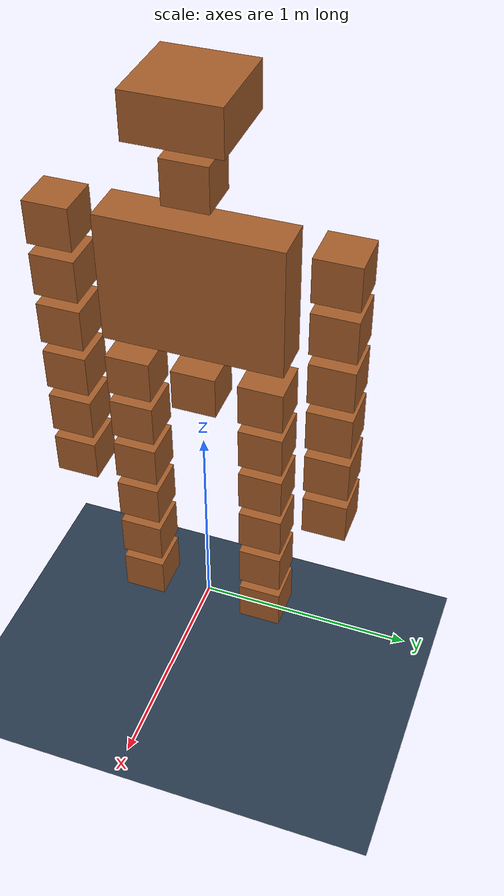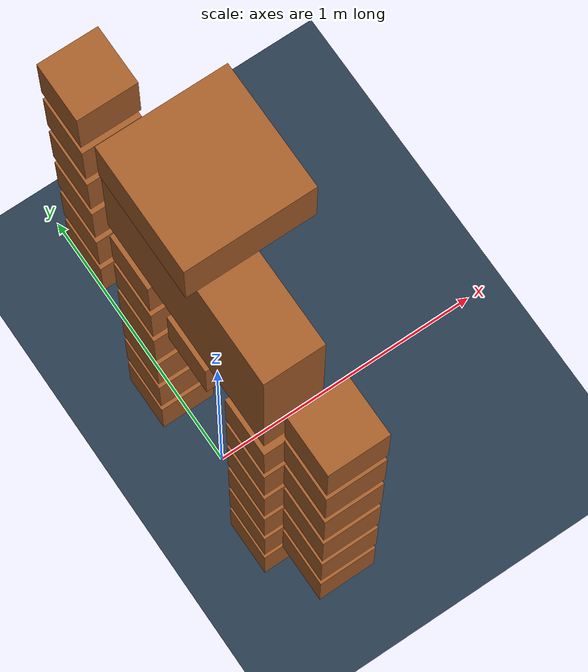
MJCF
<mujoco model="TEO_humanoid">

    <!-- Compiler settings -->
    <compiler inertiafromgeom="true" angle="degree"/>

    <!-- Default settings for joints, geoms, and motors -->
    <default>
        <joint limited="true" damping="1" armature="0"/>
        <geom condim="1" material="matgeom"/>
        <motor ctrlrange="-.4 .4" ctrllimited="true"/>
    </default>

    <!-- Simulation settings -->
    <option timestep="0.005" iterations="50" tolerance="1e-10" solver="Newton" jacobian="dense" cone="pyramidal"/>

    <!-- Size settings -->
    <size nconmax="50" njmax="200" nstack="10000"/>

    <!-- Visual settings -->
    <visual>
        <map force="0.1" zfar="30"/>
        <rgba haze="0.15 0.25 0.35 1"/>
        <quality shadowsize="2048"/>
        <global offwidth="800" offheight="800"/>
    </visual>

    <!-- Asset definitions -->
    <asset>
        <!-- Skybox texture -->
        <texture type="skybox" builtin="gradient" rgb1="0.3 0.5 0.7" rgb2="0 0 0" width="512" height="512"/>

        <!-- Plane texture -->
        <texture name="texplane" type="2d" builtin="checker" rgb1=".2 .3 .4" rgb2=".1 0.15 0.2" width="512" height="512" mark="cross" markrgb=".8 .8 .8"/>

        <!-- Geom texture -->
        <texture name="texgeom" type="cube" builtin="flat" mark="cross" width="127" height="1278"
        rgb1="0.8 0.6 0.4" rgb2="0.8 0.6 0.4" markrgb="1 1 1" random="0.01"/>

        <!-- Material definitions -->
        <material name="matplane" reflectance="0.3" texture="texplane" texrepeat="1 1" texuniform="true"/>
        <material name="matgeom" texture="texgeom" texuniform="true" rgba="0.8 0.6 .4 1"/>
    </asset>

    <!-- Worldbody definitions -->
    <worldbody>
        <!-- Ground plane -->
        <geom name="floor" pos="0 0 0" size="0 0 .25" type="plane" material="matplane" condim="3"/>

        <!-- Lights -->
        <light directional="false" diffuse=".2 .2 .2" specular="0 0 0" pos="0 0 5" dir="0 0 -1" castshadow="false"/>
        <light mode="targetbodycom" target="AxialTrunk" directional="false" diffuse=".8 .8 .8" specular="0.3 0.3 0.3" pos="0 0 4.0" dir="0 0 -1"/>

        <!-- Body hierarchy -->
        <!-- AxialTrunk -->
        <body name="AxialTrunk" pos="0 0 1.35">
            <!-- AxialTrunk geometry and joint -->
            <geom name="AxialTrunk_geom" type="box" pos="0 0 0" size="0.1 0.1 0.1"/>
            <joint name="AxialTrunk_joint" type="free" pos="0 0 0" axis="0 0 1" range="-59.3 46.3"/>

            <!-- FrontalTrunk -->
            <body name="FrontalTrunk" pos="0 0 0.5">
                <!-- FrontalTrunk geometry and joint -->
                <geom name="FrontalTrunk_geom" type="box" pos="0 0 0" size="0.1 0.4 0.3"/>
                <joint name="FrontalTrunk_joint" type="hinge" pos="0 0 0" axis="0 1 0" range="-90.4 10.1"/>

                <!-- AxialNeck -->
                <body name="AxialNeck" pos="0 0 0.5">
                    <!-- AxialNeck geometry and joint -->
                    <geom name="AxialNeck_geom" type="box" pos="0 0 0" size="0.1 0.1 0.1"/>
                    <joint name="AxialNeck_joint" type="hinge" pos="0 0 0" axis="0 0 1" range="-60 60"/>

                    <!-- FrontalNeck -->
                    <body name="FrontalNeck" pos="0 0 0.3">
                        <!-- FrontalNeck geometry and joint -->
                        <geom name="FrontalNeck_geom" type="box" pos="0 0 0" size="0.2 0.2 0.1"/>
                        <joint name="FrontalNeck_joint" type="hinge" pos="0 0 0" axis="0 1 0" range="-60 60"/>
                    </body>
                </body>

                <!-- FrontalRightShoulder -->
                <body name="FrontalRightShoulder" pos="0 -0.6 0.2">
                    <!-- FrontalRightShoulder geometry and joint -->
                    <geom name="FrontalRightShoulder_geom" type="box" pos="0 0 0" size="0.1 0.1 0.1"/>
                    <joint name="FrontalRightShoulder_joint" type="hinge" pos="0 0 0" axis="0 1 0" range="-98.1 106"/>

                    <!-- SagittalRightShoulder -->
                    <body name="SagittalRightShoulder" pos="0 0 -0.25">
                        <!-- SagittalRightShoulder geometry and joint -->
                        <geom name="SagittalRightShoulder" type="box" pos="0 0 0" size="0.1 0.1 0.1"/>
                        <joint name="SagittalRightShoulder_joint" type="hinge" pos="0 0 0" axis="1 0 0" range="-75.5 22.4"/>

                        <!-- AxialRightShoulder -->
                        <body name="AxialRightShoulder" pos="0 0 -0.25">
                            <!-- AxialRightShoulder geometry and joint -->
                            <geom name="AxialRightShoulder_geom" type="box" pos="0 0 0" size="0.1 0.1 0.1"/>
                            <joint name="AxialRightShoulder_joint" type="hinge" pos="0 0 0" axis="0 0 1" range="-80.1 57"/>

                            <!-- FrontalRightElbow -->
                            <body name="FrontalRightElbow" pos="0 0 -0.25">
                                <!-- FrontalRightElbow geometry and joint -->
                                <geom name="FrontalRightElbow_geom" type="box" pos="0 0 0" size="0.1 0.1 0.1"/>
                                <joint name="FrontalRightElbow_joint" type="hinge" pos="0 0 0" axis="0 1 0" range="-99.6 98.4"/>

                                <!-- AxialRightWrist -->
                                <body name="AxialRightWrist" pos="0 0 -0.25">
                                    <!-- AxialRightWrist geometry and joint -->
                                    <geom name="AxialRightWrist_geom" type="box" pos="0 0 0" size="0.1 0.1 0.1"/>
                                    <joint name="AxialRightWrist_joint" type="hinge" pos="0 0 0" axis="0 0 1" range="-80.4 99.6"/>

                                    <!-- FrontalRightWrist -->
                                    <body name="FrontalRightWrist" pos="0 0 -0.25">
                                        <!-- FrontalRightWrist geometry and joint -->
                                        <geom name="FrontalRightWrist_geom" type="box" pos="0 0 0" size="0.1 0.1 0.1"/>
                                        <joint name="FrontalRightWrist_joint" type="hinge" pos="0 0 0" axis="0 1 0" range="-115.1 44.7"/>
                                    </body>
                                </body>
                            </body>
                        </body>
                    </body>
                </body>

                <!-- FrontalLeftShoulder -->
                <body name="FrontalLeftShoulder" pos="0 0.6 0.2">
                    <!-- FrontalLeftShoulder geometry and joint -->
                    <geom name="FrontalLeftShoulder_geom" type="box" pos="0 0 0" size="0.1 0.1 0.1"/>
                    <joint name="FrontalLeftShoulder_joint" type="hinge" pos="0 0 0" axis="0 1 0" range="-96.8 113.2"/>

                    <!-- SagittalLeftShoulder -->
                    <body name="SagittalLeftShoulder" pos="0 0 -0.25">
                        <!-- SagittalLeftShoulder geometry and joint -->
                        <geom name="SagittalLeftShoulder" type="box" pos="0 0 0" size="0.1 0.1 0.1"/>
                        <joint name="SagittalLeftShoulder_joint" type="hinge" pos="0 0 0" axis="1 0 0" range="-23.9 76.5"/>

                        <!-- AxialLeftShoulder -->
                        <body name="AxialLeftShoulder" pos="0 0 -0.25">
                            <!-- AxialLeftShoulder geometry and joint -->
                            <geom name="AxialLeftShoulder_geom" type="box" pos="0 0 0" size="0.1 0.1 0.1"/>
                            <joint name="AxialLeftShoulder_joint" type="hinge" pos="0 0 0" axis="0 0 1" range="-51.6 84.1"/>

                            <!-- FrontalLeftElbow -->
                            <body name="FrontalLeftElbow" pos="0 0 -0.25">
                                <!-- FrontalRightElbow geometry and joint -->
                                <geom name="FrontalLeftElbow_geom" type="box" pos="0 0 0" size="0.1 0.1 0.1"/>
                                <joint name="FrontalLeftElbow_joint" type="hinge" pos="0 0 0" axis="0 1 0" range="-101.1 96.8"/>

                                <!-- AxialLeftWrist -->
                                <body name="AxialLeftWrist" pos="0 0 -0.25">
                                    <!-- AxialLeftWrist geometry and joint -->
                                    <geom name="AxialLeftWrist_geom" type="box" pos="0 0 0" size="0.1 0.1 0.1"/>
                                    <joint name="AxialLeftWrist_joint" type="hinge" pos="0 0 0" axis="0 0 1" range="-101.3 76.4"/>

                                    <!-- FrontalLeftWrist -->
                                    <body name="FrontalLeftWrist" pos="0 0 -0.25">
                                        <!-- FrontalLeftWrist geometry and joint -->
                                        <geom name="FrontalLeftWrist_geom" type="box" pos="0 0 0" size="0.1 0.1 0.1"/>
                                        <joint name="FrontalLeftWrist_joint" type="hinge" pos="0 0 0" axis="0 1 0" range="-113.3 61.3"/>
                                    </body>
                                </body>
                            </body>
                        </body>
                    </body>
                </body>
            </body>

            <!-- AxialRightHip -->
            <body name="AxialRightHip" pos="0 0.3 0">
                <!-- AxialRightHip geomtry and joint -->
                <geom name="AxialRightHip_geom" type="box" pos="0 0 0" size="0.1 0.1 0.1"/>
                <joint name="AxialRightHip_joint" type="hinge" pos="0 0 0" axis="0 0 1" range="-32.8 27.9"/>

                <!-- SaggitalRightHip -->
                <body name="SagittalRightHip" pos="0 0 -0.25">
                    <!-- SaggitalRightHip geometry and joint -->
                    <geom name="SagittalRightHip" type="box" pos="0 0 0" size="0.1 0.1 0.1"/>
                    <joint name="SagittalRightHip_joint" type="hinge" pos="0 0 0" axis="1 0 0" range="-14.2 12.5"/>

                    <!-- FrontalRightHip -->
                    <body name="FrontalRightHip" pos="0 0 -0.25">
                        <!-- FrontalRightHip geometry and joint -->
                        <geom name="FrontalRightHip_geom" type="box" pos="0 0 0" size="0.1 0.1 0.1"/>
                        <joint name="FrontalRightHip_joint" type="hinge" pos="0 0 0" axis="0 1 0" range="-31.6 42.3"/>

                        <!-- FrontalRightKnee -->
                        <body name="FrontalRightKnee" pos="0 0 -0.25">
                            <!-- FrontalRightKnee geometry and joint -->
                            <geom name="FrontalRightKnee_geom" type="box" pos="0 0 0" size="0.1 0.1 0.1"/>
                            <joint name="FrontalRightKnee_joint" type="hinge" pos="0 0 0" axis="0 1 0" range="-61.3 82.4"/>

                            <!-- FrontalRightAnkle -->
                            <body name="FrontalRightAnkle" pos="0 0 -0.25">
                                <!-- FrontalRightAnkle geometry and joint -->
                                <geom name="FrontalRightAnkle_geom" type="box" pos="0 0 0" size="0.1 0.1 0.1"/>
                                <joint name="FrontalRightAnkle_joint" type="hinge" pos="0 0 0" axis="0 1 0" range="-23.1 25.4"/>

                                <!-- SagittalRightAnkle -->
                                <body name="SagittalRightAnkle" pos="0 0 -0.25">
                                    <!-- SagittalRightAnkle geometry and joint -->
                                    <geom name="SagittalRightAnkle" type="box" pos="0 0 0" size="0.1 0.1 0.1"/>
                                    <joint name="SagittalRightAnkle_joint" type="hinge" pos="0 0 0" axis="1 0 0" range="-19.9 42.5"/>
                                </body>
                            </body>
                        </body>
                    </body>
                </body>
            </body>

            <!-- AxialLeftHip -->
            <body name="AxialLeftHip" pos="0 -0.3 0">
                <!-- AxialLeftHip geomtry and joint -->
                <geom name="AxialLeftHip_geom" type="box" pos="0 0 0" size="0.1 0.1 0.1"/>
                <joint name="AxialLeftHip_joint" type="hinge" pos="0 0 0" axis="0 0 1" range="-32.8 27.9"/>

                <!-- SaggitalLeftHip -->
                <body name="SagittalLeftHip" pos="0 0 -0.25">
                    <!-- SaggitalLeftHip geometry and joint -->
                    <geom name="SagittalLeftHip" type="box" pos="0 0 0" size="0.1 0.1 0.1"/>
                    <joint name="SagittalLeftHip_joint" type="hinge" pos="0 0 0" axis="1 0 0" range="-14.2 12.5"/>

                    <!-- FrontalLeftHip -->
                    <body name="FrontalLeftHip" pos="0 0 -0.25">
                        <!-- FrontalLeftHip geometry and joint -->
                        <geom name="FrontalLeftHip_geom" type="box" pos="0 0 0" size="0.1 0.1 0.1"/>
                        <joint name="FrontalLeftHip_joint" type="hinge" pos="0 0 0" axis="0 1 0" range="-31.6 42.3"/>

                        <!-- FrontalLeftKnee -->
                        <body name="FrontalLeftKnee" pos="0 0 -0.25">
                            <!-- FrontalLeftKnee geometry and joint -->
                            <geom name="FrontalLeftKnee_geom" type="box" pos="0 0 0" size="0.1 0.1 0.1"/>
                            <joint name="FrontalLeftKnee_joint" type="hinge" pos="0 0 0" axis="0 1 0" range="-61.3 82.4"/>

                            <!-- FrontalLeftAnkle -->
                            <body name="FrontalLeftAnkle" pos="0 0 -0.25">
                                <!-- FrontalLeftAnkle geometry and joint -->
                                <geom name="FrontalLeftAnkle_geom" type="box" pos="0 0 0" size="0.1 0.1 0.1"/>
                                <joint name="FrontalLeftAnkle_joint" type="hinge" pos="0 0 0" axis="0 1 0" range="-23.1 25.4"/>

                                <!-- SagittalLeftAnkle -->
                                <body name="SagittalLeftAnkle" pos="0 0 -0.25">
                                    <!-- SagittalLeftAnkle geometry and joint -->
                                    <geom name="SagittalLeftAnkle" type="box" pos="0 0 0" size="0.1 0.1 0.1"/>
                                    <joint name="SagittalLeftAnkle_joint" type="hinge" pos="0 0 0" axis="1 0 0" range="-19.9 42.5"/>
                                </body>
                            </body>
                        </body>
                    </body>
                </body>
            </body>

        </body>

    </worldbody>

    <!-- Actuator definitions -->
    <actuator>

        <!-- Motors for controlling joints -->
        <motor name="AxialTrunk_motor" gear="200" joint="AxialTrunk_joint"/>
        <motor name="FrontalTrunk_motor" gear="200" joint="FrontalTrunk_joint"/>

        <!-- Neck -->
        <motor name="AxialNeck_motor" gear="200" joint="AxialNeck_joint"/>
        <motor name="FrontalNeck_motor" gear="200" joint="FrontalNeck_joint"/>

        <!-- Right arm -->
        <motor name="FrontalRightShoulder_motor" gear="200" joint="FrontalRightShoulder_joint"/>
        <motor name="SagittalRightShoulder_motor" gear="200" joint="SagittalRightShoulder_joint"/>
        <motor name="AxialRightShoulder_motor" gear="200" joint="AxialRightShoulder_joint"/>
        <motor name="FrontalRightElbow_motor" gear="200" joint="FrontalRightElbow_joint"/>
        <motor name="AxialRightWrist_motor" gear="200" joint="AxialRightWrist_joint"/>
        <motor name="FrontalRightWrist_motor" gear="200" joint="FrontalRightWrist_joint"/>

        <!-- Left arm -->
        <motor name="FrontalLeftShoulder_motor" gear="200" joint="FrontalLeftShoulder_joint"/>
        <motor name="SagittalLeftShoulder_motor" gear="200" joint="SagittalLeftShoulder_joint"/>
        <motor name="AxialLeftShoulder_motor" gear="200" joint="AxialLeftShoulder_joint"/>
        <motor name="FrontalLeftElbow_motor" gear="200" joint="FrontalLeftElbow_joint"/>
        <motor name="AxialLeftWrist_motor" gear="200" joint="AxialLeftWrist_joint"/>
        <motor name="FrontalLeftWrist_motor" gear="200" joint="FrontalLeftWrist_joint"/>

        <!-- Right leg -->
        <motor name="AxialRightHip_motor" gear="200" joint="AxialRightHip_joint"/>
        <motor name="SagittalRightHip_motor" gear="200" joint="SagittalRightHip_joint"/>
        <motor name="FrontalRightHip_motor" gear="200" joint="FrontalRightHip_joint"/>
        <motor name="FrontalRightKnee_motor" gear="200" joint="FrontalRightKnee_joint"/>
        <motor name="FrontalRightAnkle_motor" gear="200" joint="FrontalRightAnkle_joint"/>
        <motor name="SagittalRightAnkle_motor" gear="200" joint="SagittalRightAnkle_joint"/>

        <!-- Left leg -->
        <motor name="AxialLeftHip_motor" gear="200" joint="AxialLeftHip_joint"/>
        <motor name="SagittalLeftHip_motor" gear="200" joint="SagittalLeftHip_joint"/>
        <motor name="FrontalLeftHip_motor" gear="200" joint="FrontalLeftHip_joint"/>
        <motor name="FrontalLeftKnee_motor" gear="200" joint="FrontalLeftKnee_joint"/>
        <motor name="FrontalLeftAnkle_motor" gear="200" joint="FrontalLeftAnkle_joint"/>
        <motor name="SagittalLeftAnkle_motor" gear="200" joint="SagittalLeftAnkle_joint"/>

    </actuator>

</mujoco>
